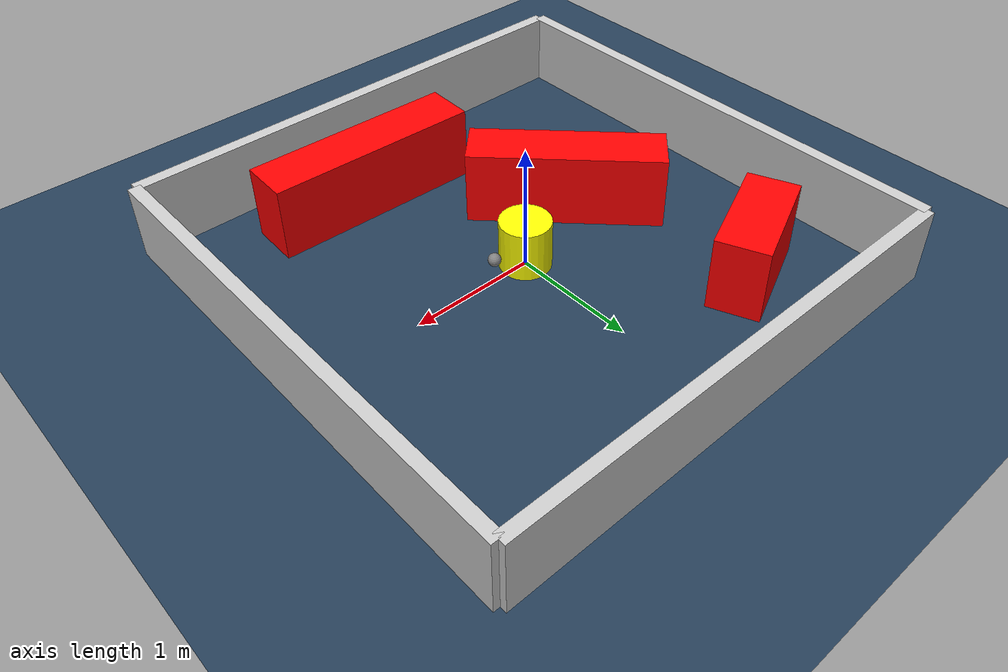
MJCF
<?xml version="1.0" ?>
<mujoco model="generated_environment">
  <option timestep="0.01" integrator="RK4" cone="elliptic"/>
  <default>
    <geom density="1"/>
  </default>
  <asset>
    <texture builtin="gradient" height="3072" rgb1="0.3 0.5 0.7" rgb2="0 0 0" type="skybox" width="512"/>
    <texture builtin="checker" height="300" mark="edge" markrgb="0.8 0.8 0.8" name="groundplane" rgb1="0.2 0.3 0.4" rgb2="0.1 0.2 0.3" type="2d" width="300"/>
    <material name="groundplane" reflectance="0.2" texrepeat="5 5" texture="groundplane" texuniform="true"/>
    <material name="robot" rgba="0.0 1.0 0.0 1"/>
  </asset>
  <worldbody>
    <light dir="0 0 -1" directional="true" pos="0 0 1.5"/>
    <geom condim="4" friction="1.0 0.005 0.001" material="groundplane" name="floor" size="0 0 0.05" type="plane"/>
    <body name="walls">
      <geom name="wall_1" condim="4" pos="-2.0 0.0 0.3" rgba="0.800000011920929 0.800000011920929 0.800000011920929 1.0" size="0.05 2.0 0.3" type="box"/>
      <geom name="wall_2" condim="4" pos="2.0 0.0 0.3" rgba="0.800000011920929 0.800000011920929 0.800000011920929 1.0" size="0.05 2.0 0.3" type="box"/>
      <geom name="wall_3" condim="4" pos="0.0 -2.0 0.3" rgba="0.800000011920929 0.800000011920929 0.800000011920929 1.0" size="2.0 0.05 0.3" type="box"/>
      <geom name="wall_4" condim="4" pos="0.0 2.0 0.3" rgba="0.800000011920929 0.800000011920929 0.800000011920929 1.0" size="2.0 0.05 0.3" type="box"/>
    </body>
    <body name="robot">
      <joint name="joint_x" type="slide" pos="0 0 0" axis="1 0 0"/>
      <joint name="joint_y" type="slide" pos="0 0 0" axis="0 1 0"/>
      <geom name="robot" type="sphere" pos="0.3 0.0 0.2" size="0.05" mass="5." friction="1.0 0.005 0.0001" condim="4" rgba="0.5 0.5 0.5 1.0"/>
      <site name="sensor_ball"/>
    </body>
    <body name="obstacle_movable_1">
      <geom name="obstacle_movable_1" condim="4" pos="0.0 0.0 0.2" euler="0 0 0.0" friction="1.0 0.005 0.001" rgba="1.0 1.0 0.0 1.0" size="0.2 0.2 0.0" type="cylinder" mass="0.1"/>
      <joint type="free"/>
    </body>
    <body name="obstacle_2_static">
      <geom name="obstacle_2_static" condim="4" pos="0.4218492750875378 -1.4115756435834959 0.3" euler="0 0 358.4492184753155" friction="1.0 0.005 0.001" rgba="1 0 0 1" size="0.8545011872479087 0.2 0.3" type="box"/>
    </body>
    <body name="obstacle_3_static">
      <geom name="obstacle_3_static" condim="4" pos="-0.6955848421616613 -0.29170945288733297 0.3" euler="0 0 314.82396274120924" friction="1.0 0.005 0.001" rgba="1 0 0 1" size="0.765856722700045 0.2 0.3" type="box"/>
    </body>
    <body name="obstacle_4_static">
      <geom name="obstacle_4_static" condim="4" pos="-1.1004002255386853 1.220298184275779 0.3" euler="0 0 203.2040954004821" friction="1.0 0.005 0.001" rgba="1 0 0 1" size="0.43817708085120183 0.2 0.3" type="box"/>
    </body>
  </worldbody>
  <actuator>
    <motor name="actuator_x" joint="joint_x" gear="1" ctrlrange="-1 1"/>
    <motor name="actuator_y" joint="joint_y" gear="1" ctrlrange="-1 1"/>
  </actuator>
</mujoco>
